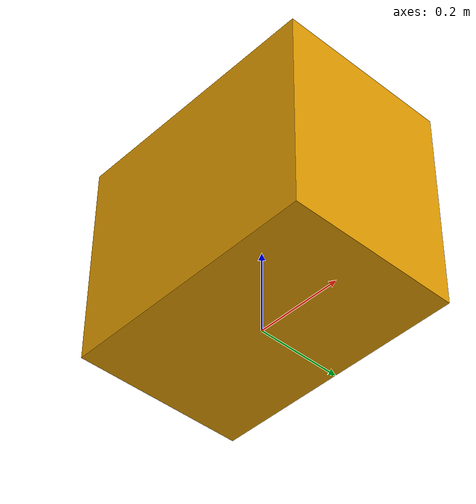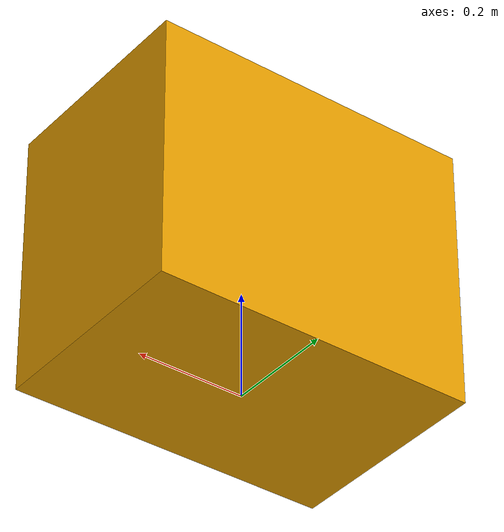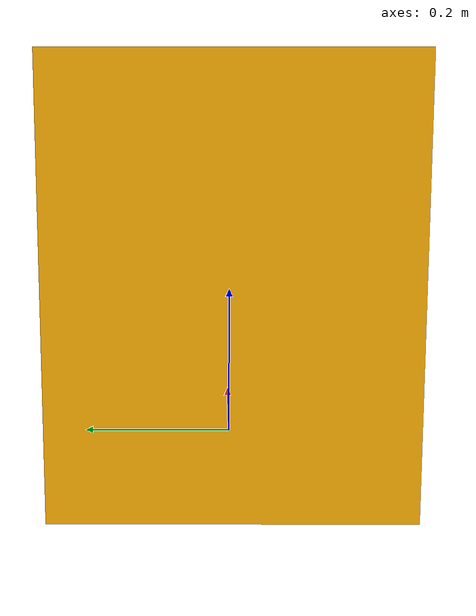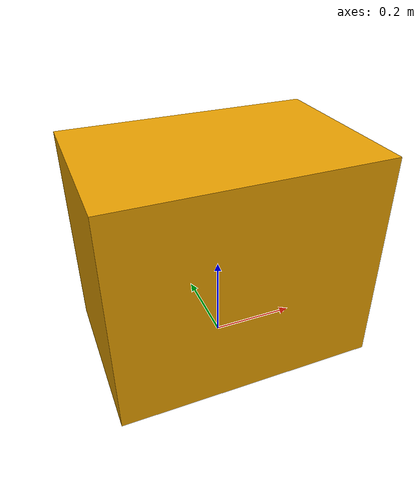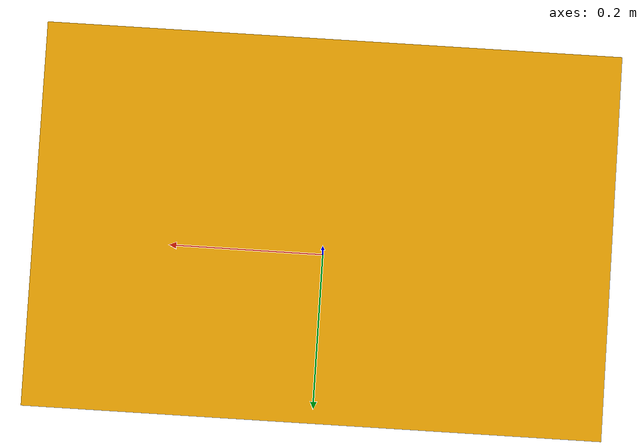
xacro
<?xml version="1.0"?>
<robot xmlns:xacro="http://www.ros.org/wiki/xacro" name="nova_carter">
  <xacro:arg name="robot_namespace" default=""/>

  <link name="base_link">
    <visual>
      <geometry><box size="0.6 0.4 0.5"/></geometry>
      <origin xyz="0 0 0.25"/>
    </visual>
    <collision>
      <geometry><box size="0.6 0.4 0.5"/></geometry>
      <origin xyz="0 0 0.25"/>
    </collision>
  </link>

  <link name="laser_frame"/>
  <joint name="base_link_to_laser" type="fixed">
    <parent link="base_link"/>
    <child link="laser_frame"/>
    <origin xyz="0 0 0.55"/>
  </joint>
</robot>
